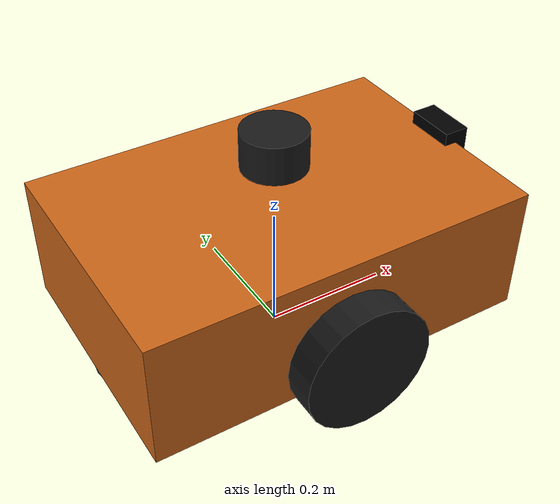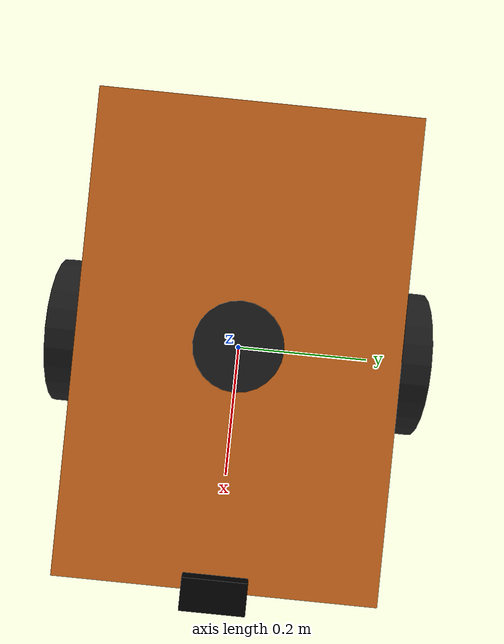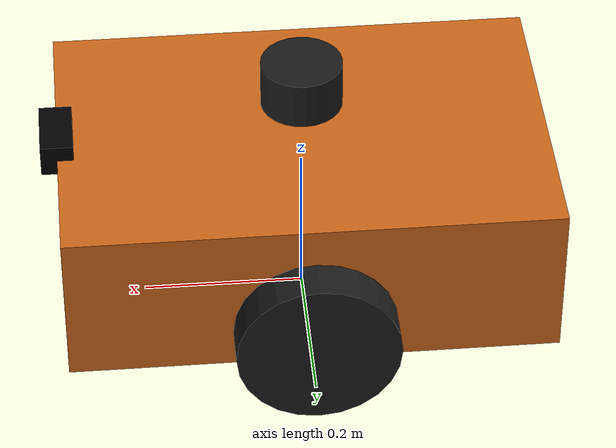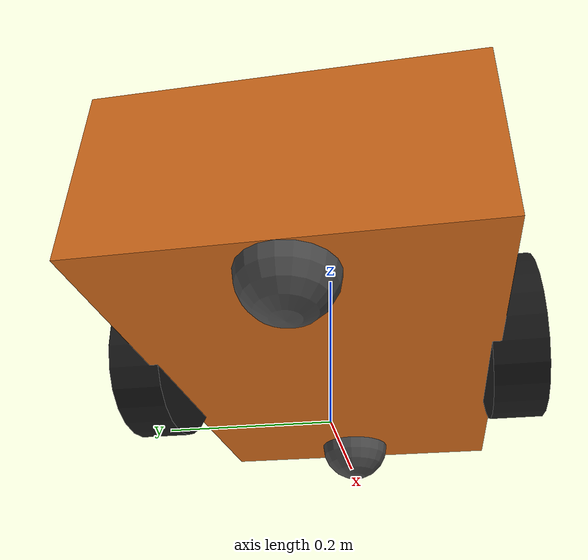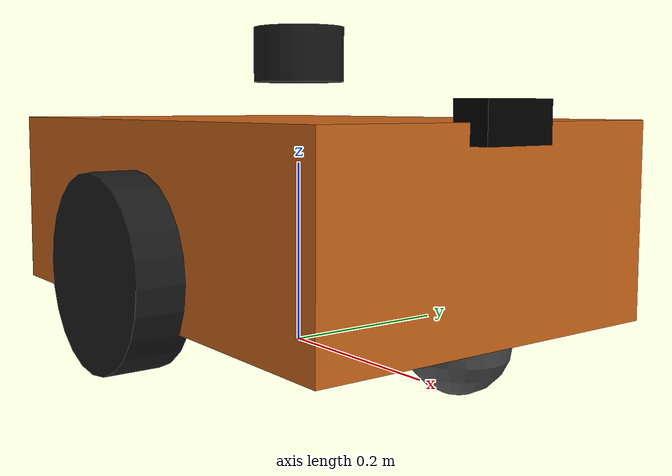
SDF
<?xml version="1.0" ?>
<sdf version="1.7">
  <model name="mine_rover">
    <static>0</static>
    <self_collide>0</self_collide>

    <link name="base_footprint">
      <pose>0 0 0 0 0 0</pose>
      <inertial>
        <mass>0.0001</mass>
        <inertia>
          <ixx>0.0001</ixx>
          <ixy>0</ixy>
          <ixz>0</ixz>
          <iyy>0.0001</iyy>
          <iyz>0</iyz>
          <izz>0.0001</izz>
        </inertia>
      </inertial>
    </link>

    <link name="base_link">
      <pose>0 0 0.15 0 0 0</pose>
      <inertial>
        <mass>10.0</mass>
        <inertia>
          <ixx>0.25</ixx>
          <ixy>0</ixy>
          <ixz>0</ixz>
          <iyy>0.45</iyy>
          <iyz>0</iyz>
          <izz>0.5</izz>
        </inertia>
      </inertial>
      <collision name="base_collision">
        <geometry>
          <box>
            <size>0.6 0.4 0.2</size>
          </box>
        </geometry>
      </collision>
      <visual name="base_visual">
        <geometry>
          <box>
            <size>0.6 0.4 0.2</size>
          </box>
        </geometry>
        <material>
          <ambient>0.8 0.4 0.1 1</ambient>
          <diffuse>0.8 0.4 0.1 1</diffuse>
          <specular>0.2 0.2 0.2 1</specular>
        </material>
      </visual>
    </link>

    <joint name="base_to_footprint" type="fixed">
      <parent>base_footprint</parent>
      <child>base_link</child>
    </joint>

    <link name="wheel_left_link">
      <pose>0 0.22 0.1 -1.5708 0 0</pose>
      <inertial>
        <mass>0.5</mass>
        <inertia>
          <ixx>0.002</ixx>
          <ixy>0</ixy>
          <ixz>0</ixz>
          <iyy>0.002</iyy>
          <iyz>0</iyz>
          <izz>0.003</izz>
        </inertia>
      </inertial>
      <collision name="wheel_left_collision">
        <geometry>
          <cylinder>
            <radius>0.1</radius>
            <length>0.06</length>
          </cylinder>
        </geometry>
        <surface>
          <friction>
            <ode>
              <mu>1.2</mu>
              <mu2>1.2</mu2>
            </ode>
          </friction>
        </surface>
      </collision>
      <visual name="wheel_left_visual">
        <geometry>
          <cylinder>
            <radius>0.1</radius>
            <length>0.06</length>
          </cylinder>
        </geometry>
        <material>
          <ambient>0.1 0.1 0.1 1</ambient>
          <diffuse>0.1 0.1 0.1 1</diffuse>
        </material>
      </visual>
    </link>

    <joint name="wheel_left_joint" type="revolute">
      <parent>base_link</parent>
      <child>wheel_left_link</child>
      <axis>
        <xyz>0 1 0</xyz>
        <limit>
          <lower>-1e16</lower>
          <upper>1e16</upper>
        </limit>
        <dynamics>
          <damping>0.01</damping>
        </dynamics>
      </axis>
    </joint>

    <link name="wheel_right_link">
      <pose>0 -0.22 0.1 -1.5708 0 0</pose>
      <inertial>
        <mass>0.5</mass>
        <inertia>
          <ixx>0.002</ixx>
          <ixy>0</ixy>
          <ixz>0</ixz>
          <iyy>0.002</iyy>
          <iyz>0</iyz>
          <izz>0.003</izz>
        </inertia>
      </inertial>
      <collision name="wheel_right_collision">
        <geometry>
          <cylinder>
            <radius>0.1</radius>
            <length>0.06</length>
          </cylinder>
        </geometry>
        <surface>
          <friction>
            <ode>
              <mu>1.2</mu>
              <mu2>1.2</mu2>
            </ode>
          </friction>
        </surface>
      </collision>
      <visual name="wheel_right_visual">
        <geometry>
          <cylinder>
            <radius>0.1</radius>
            <length>0.06</length>
          </cylinder>
        </geometry>
        <material>
          <ambient>0.1 0.1 0.1 1</ambient>
          <diffuse>0.1 0.1 0.1 1</diffuse>
        </material>
      </visual>
    </link>

    <joint name="wheel_right_joint" type="revolute">
      <parent>base_link</parent>
      <child>wheel_right_link</child>
      <axis>
        <xyz>0 1 0</xyz>
        <limit>
          <lower>-1e16</lower>
          <upper>1e16</upper>
        </limit>
        <dynamics>
          <damping>0.01</damping>
        </dynamics>
      </axis>
    </joint>

    <link name="caster_front_link">
      <pose>0.25 0 0.05 0 0 0</pose>
      <inertial>
        <mass>0.1</mass>
        <inertia>
          <ixx>0.0001</ixx>
          <ixy>0</ixy>
          <ixz>0</ixz>
          <iyy>0.0001</iyy>
          <iyz>0</iyz>
          <izz>0.0001</izz>
        </inertia>
      </inertial>
      <collision name="caster_front_collision">
        <geometry>
          <sphere>
            <radius>0.05</radius>
          </sphere>
        </geometry>
        <surface>
          <friction>
            <ode>
              <mu>0.01</mu>
              <mu2>0.01</mu2>
            </ode>
          </friction>
        </surface>
      </collision>
      <visual name="caster_front_visual">
        <geometry>
          <sphere>
            <radius>0.05</radius>
          </sphere>
        </geometry>
        <material>
          <ambient>0.3 0.3 0.3 1</ambient>
          <diffuse>0.3 0.3 0.3 1</diffuse>
        </material>
      </visual>
    </link>

    <joint name="caster_front_joint" type="fixed">
      <parent>base_link</parent>
      <child>caster_front_link</child>
    </joint>

    <link name="caster_back_link">
      <pose>-0.25 0 0.05 0 0 0</pose>
      <inertial>
        <mass>0.1</mass>
        <inertia>
          <ixx>0.0001</ixx>
          <ixy>0</ixy>
          <ixz>0</ixz>
          <iyy>0.0001</iyy>
          <iyz>0</iyz>
          <izz>0.0001</izz>
        </inertia>
      </inertial>
      <collision name="caster_back_collision">
        <geometry>
          <sphere>
            <radius>0.05</radius>
          </sphere>
        </geometry>
        <surface>
          <friction>
            <ode>
              <mu>0.01</mu>
              <mu2>0.01</mu2>
            </ode>
          </friction>
        </surface>
      </collision>
      <visual name="caster_back_visual">
        <geometry>
          <sphere>
            <radius>0.05</radius>
          </sphere>
        </geometry>
        <material>
          <ambient>0.3 0.3 0.3 1</ambient>
          <diffuse>0.3 0.3 0.3 1</diffuse>
        </material>
      </visual>
    </link>

    <joint name="caster_back_joint" type="fixed">
      <parent>base_link</parent>
      <child>caster_back_link</child>
    </joint>

    <link name="lidar_link">
      <pose>0 0 0.32 0 0 0</pose>
      <inertial>
        <mass>0.1</mass>
        <inertia>
          <ixx>0.0001</ixx>
          <ixy>0</ixy>
          <ixz>0</ixz>
          <iyy>0.0001</iyy>
          <iyz>0</iyz>
          <izz>0.0001</izz>
        </inertia>
      </inertial>
      <visual name="lidar_visual">
        <geometry>
          <cylinder>
            <radius>0.05</radius>
            <length>0.06</length>
          </cylinder>
        </geometry>
        <material>
          <ambient>0.1 0.1 0.1 1</ambient>
          <diffuse>0.1 0.1 0.1 1</diffuse>
        </material>
      </visual>
      <sensor name="gpu_lidar" type="gpu_lidar">
        <pose>0 0 0 0 0 0</pose>
        <topic>mine_rover/scan</topic>
        <update_rate>10</update_rate>
        <always_on>1</always_on>
        <visualize>0</visualize>
        <ray>
          <scan>
            <horizontal>
              <samples>360</samples>
              <resolution>1</resolution>
              <min_angle>-3.141592</min_angle>
              <max_angle>3.141592</max_angle>
            </horizontal>
          </scan>
          <range>
            <min>0.12</min>
            <max>10.0</max>
            <resolution>0.01</resolution>
          </range>
        </ray>
      </sensor>
    </link>

    <joint name="lidar_joint" type="fixed">
      <parent>base_link</parent>
      <child>lidar_link</child>
    </joint>

    <link name="camera_link">
      <pose>0.3 0 0.25 0 0 0</pose>
      <inertial>
        <mass>0.05</mass>
        <inertia>
          <ixx>0.0001</ixx>
          <ixy>0</ixy>
          <ixz>0</ixz>
          <iyy>0.0001</iyy>
          <iyz>0</iyz>
          <izz>0.0001</izz>
        </inertia>
      </inertial>
      <visual name="camera_visual">
        <geometry>
          <box>
            <size>0.04 0.08 0.04</size>
          </box>
        </geometry>
        <material>
          <ambient>0.0 0.0 0.0 1</ambient>
          <diffuse>0.0 0.0 0.0 1</diffuse>
        </material>
      </visual>
      <sensor name="rgb_camera" type="camera">
        <pose>0 0 0 0 0 0</pose>
        <topic>mine_rover/camera/image_raw</topic>
        <update_rate>15</update_rate>
        <always_on>1</always_on>
        <camera>
          <horizontal_fov>1.3962634</horizontal_fov>
          <image>
            <width>320</width>
            <height>240</height>
            <format>R8G8B8</format>
          </image>
          <clip>
            <near>0.05</near>
            <far>30.0</far>
          </clip>
        </camera>
      </sensor>
    </link>

    <joint name="camera_joint" type="fixed">
      <parent>base_link</parent>
      <child>camera_link</child>
    </joint>

    <plugin filename="gz-sim-diff-drive-system" name="gz::sim::systems::DiffDrive">
      <publish_tf>1</publish_tf>
      <left_joint>wheel_left_joint</left_joint>
      <right_joint>wheel_right_joint</right_joint>
      <wheel_separation>0.44</wheel_separation>
      <wheel_diameter>0.2</wheel_diameter>
      <max_linear_acceleration>2.0</max_linear_acceleration>
      <topic>mine_rover/cmd_vel</topic>
      <odom_topic>mine_rover/odom</odom_topic>
      <frame_id>odom</frame_id>
      <child_frame_id>base_footprint</child_frame_id>
    </plugin>

    <link name="imu_link">
      <pose>0 0 0.2 0 0 0</pose>
      <inertial>
        <mass>0.01</mass>
        <inertia>
          <ixx>0.000001</ixx><ixy>0</ixy><ixz>0</ixz>
          <iyy>0.000001</iyy><iyz>0</iyz>
          <izz>0.000001</izz>
        </inertia>
      </inertial>
      <sensor name="imu_sensor" type="imu">
        <always_on>1</always_on>
        <update_rate>50</update_rate>
        <topic>mine_rover/imu</topic>
        <imu>
          <angular_velocity>
            <x><noise type="gaussian"><mean>0</mean><stddev>0.009</stddev></noise></x>
            <y><noise type="gaussian"><mean>0</mean><stddev>0.009</stddev></noise></y>
            <z><noise type="gaussian"><mean>0</mean><stddev>0.009</stddev></noise></z>
          </angular_velocity>
          <linear_acceleration>
            <x><noise type="gaussian"><mean>0</mean><stddev>0.021</stddev></noise></x>
            <y><noise type="gaussian"><mean>0</mean><stddev>0.021</stddev></noise></y>
            <z><noise type="gaussian"><mean>0</mean><stddev>0.021</stddev></noise></z>
          </linear_acceleration>
        </imu>
      </sensor>
    </link>

    <joint name="imu_joint" type="fixed">
      <parent>base_link</parent>
      <child>imu_link</child>
    </joint>

    <plugin filename="gz-sim-imu-system"
            name="gz::sim::systems::Imu">
    </plugin>

  </model>
</sdf>
